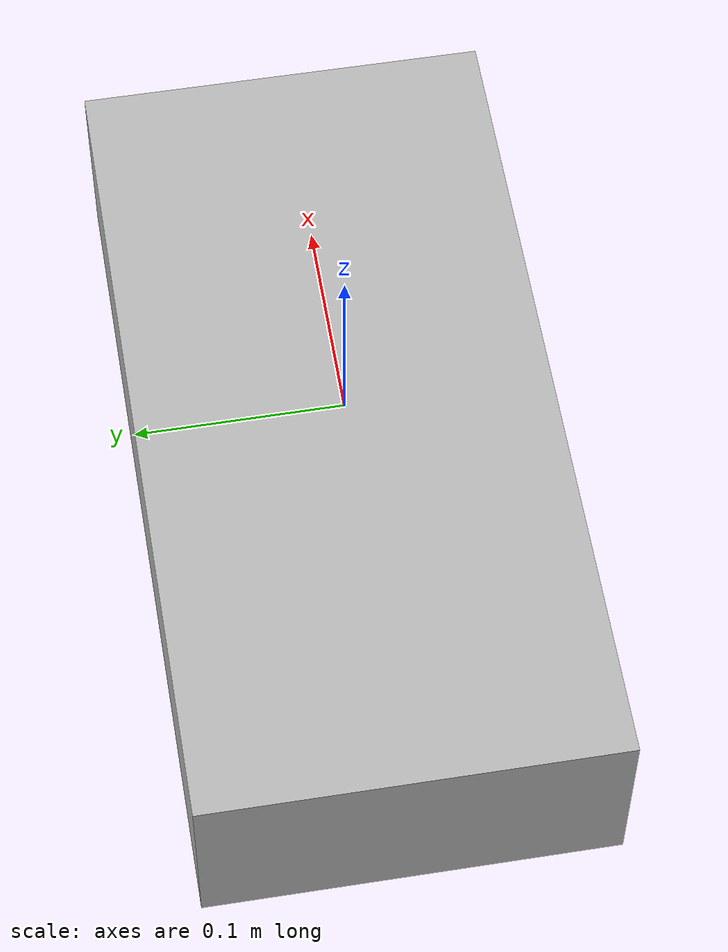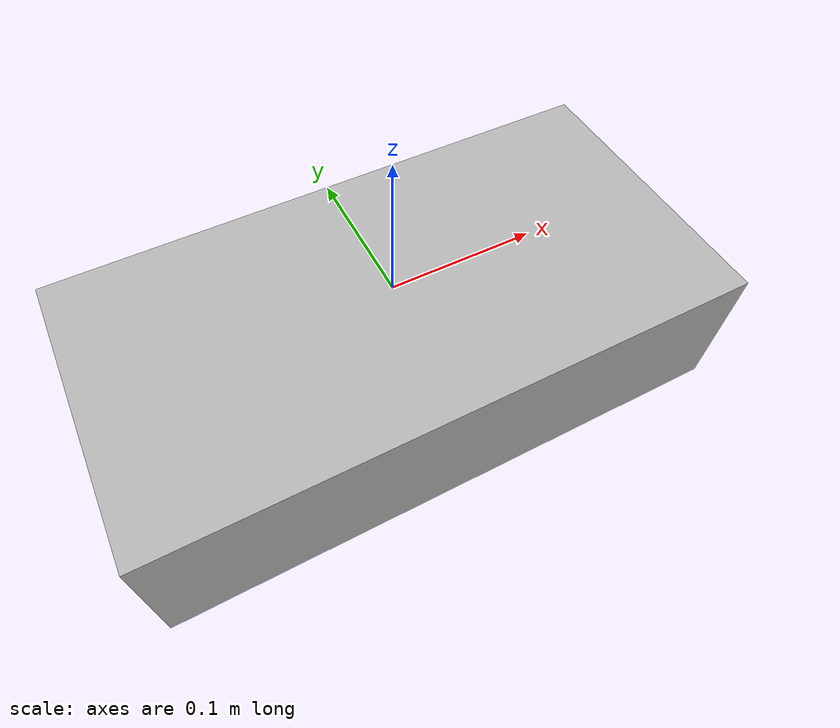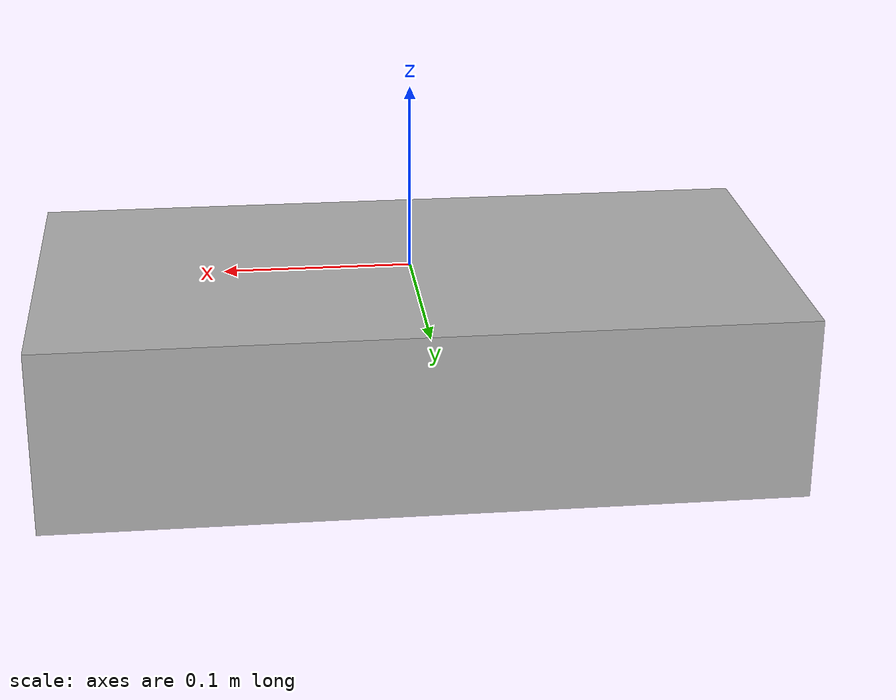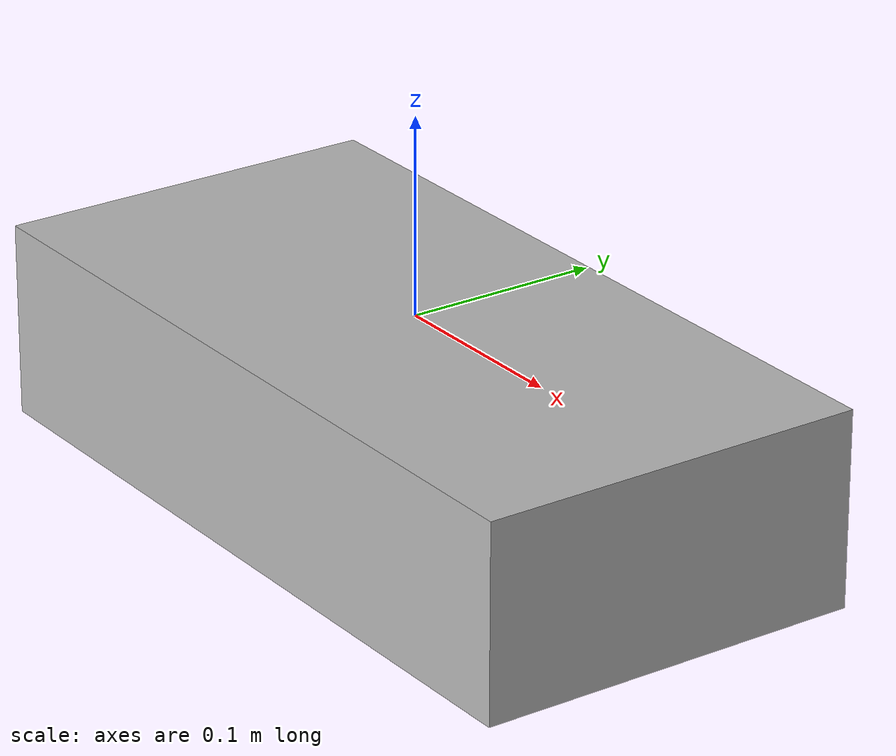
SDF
<?xml version="1.0"?>
<sdf version="1.6">
  <world name="c_map">

    <!-- Optional tweaks to increase performance -->
    <scene>
        <shadows>false</shadows>
    </scene>
    <physics type="ode">
        <real_time_update_rate>1000</real_time_update_rate>
        <max_step_size>0.001</max_step_size>
    </physics>

    <include>
      <uri>model://sun</uri>
    </include>

    <model name="c_map">
      <static>true</static>
      <pose>0 0 -0.05 0 0 0</pose>
      <link name="ground">
        <pose>0 0 0.001 0 0 0</pose>
        <visual name="visual">
          <geometry>
        <box>
          <size>.4 .2 .1</size>
        </box>
          </geometry>
        </visual>
      </link>
    </model>
  </world>
</sdf>
